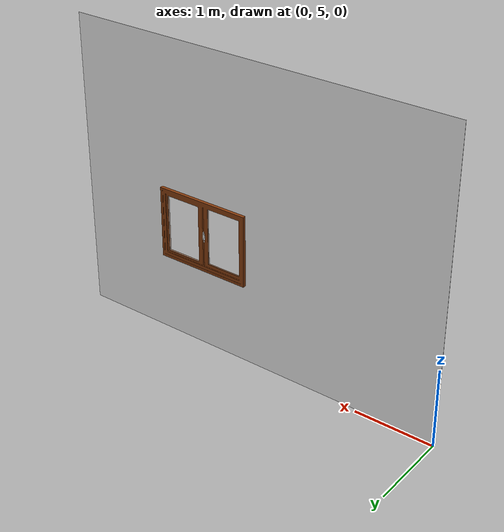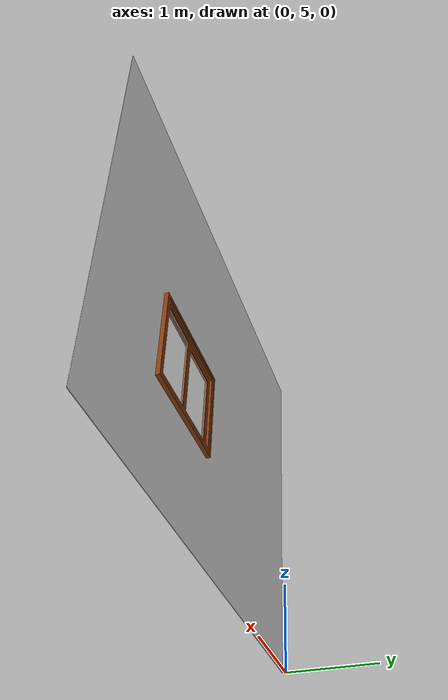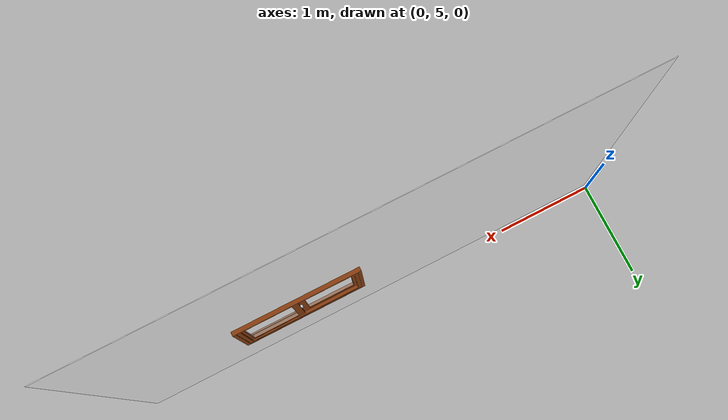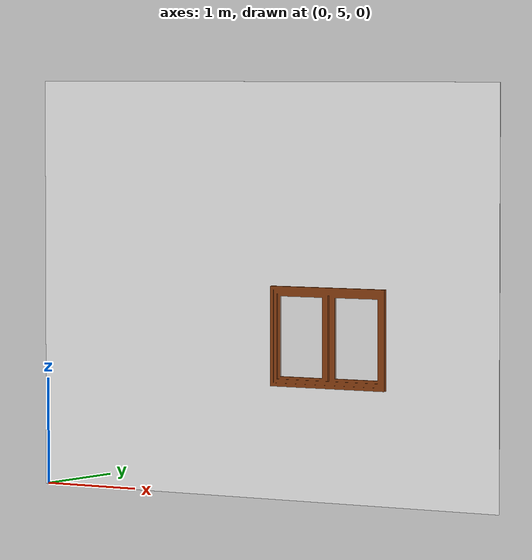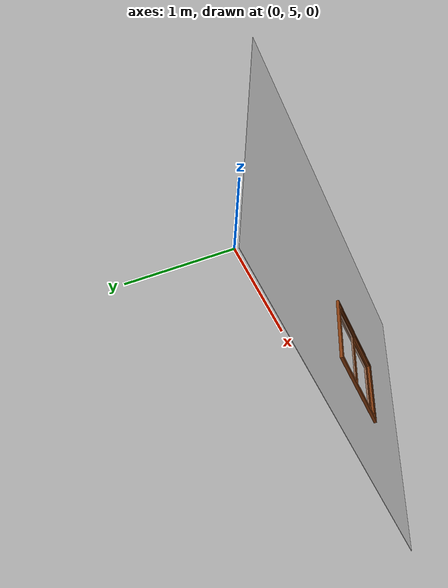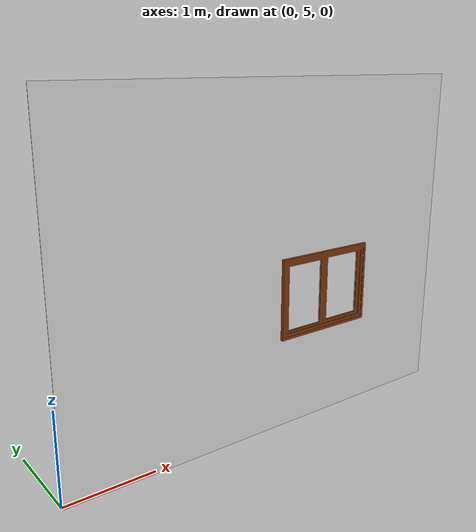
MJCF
<?xml version="1.0"?>
<mujoco model="kitchen-wall">
  <compiler autolimits="true" angle="radian"/>
  <default>
    <default class="default">
      <default class="visual">
        <geom contype="0" conaffinity="0" group="0"/>
      </default>
      <default class="structural">
        <geom contype="8" conaffinity="7" group="4" friction="0.90000000000000002 0.90000000000000002 0.001" solref="0.025000000000000001 1" solimp="0.998 0.998 0.001"/>
      </default>
    </default>
  </default>
  <asset>
    <texture name="tex_light_wood_counters" type="2d" file="assets/kitchen_floor.png"/>
    <material name="mat_white_plastic" class="default" rgba="1 1 1 1"/>
    <material name="mat_glass_white" class="default" rgba="1 1 1 0.5"/>
    <material name="mat_light_wood_cabinets" class="default" texture="tex_light_wood_counters" rgba="0.74528300000000003 0.46580189999999999 0.18632080000000001 1"/>
    <material name="mat_pure_white" class="default" texture="tex_white_fabric" rgba="1 1 1 1"/>
    <texture name="tex_white_fabric" type="2d" file="assets/kitchen_wall_1.png"/>
    <mesh name="mesh_wall" class="default" file="assets/kitchen_wall_1.obj" scale="-1 1 1"/>
    <mesh name="mesh_window_slider_0" class="default" file="assets/window_slider_0.obj"/>
    <mesh name="mesh_window_slider_1" class="default" file="assets/window_slider_1.obj"/>
    <mesh name="mesh_window_slider_2" class="default" file="assets/window_slider_2.obj"/>
  </asset>
  <worldbody>
    <body name="wall" quat="0 0 0.70710678118654746 0.70710678118654768">
      <geom name="wall_visual" class="visual" type="mesh" material="mat_pure_white" mesh="mesh_wall"/>
      <geom name="wall_structural" class="structural" type="mesh" mesh="mesh_wall"/>
    </body>
    <body name="window" pos="3.1820963211331281 4.964999999999999 1.4973600432276724" quat="0.70710678118654746 0.70710678118654768 4.3297802811774658e-17 4.3297802811774677e-17">
      <geom name="window_visual_0" class="visual" type="mesh" material="mat_white_plastic" mesh="mesh_window_slider_0"/>
      <geom name="window_visual_1" class="visual" type="mesh" material="mat_glass_white" mesh="mesh_window_slider_1"/>
      <geom name="window_visual_2" class="visual" type="mesh" material="mat_light_wood_cabinets" mesh="mesh_window_slider_2"/>
    </body>
  </worldbody>
</mujoco>
